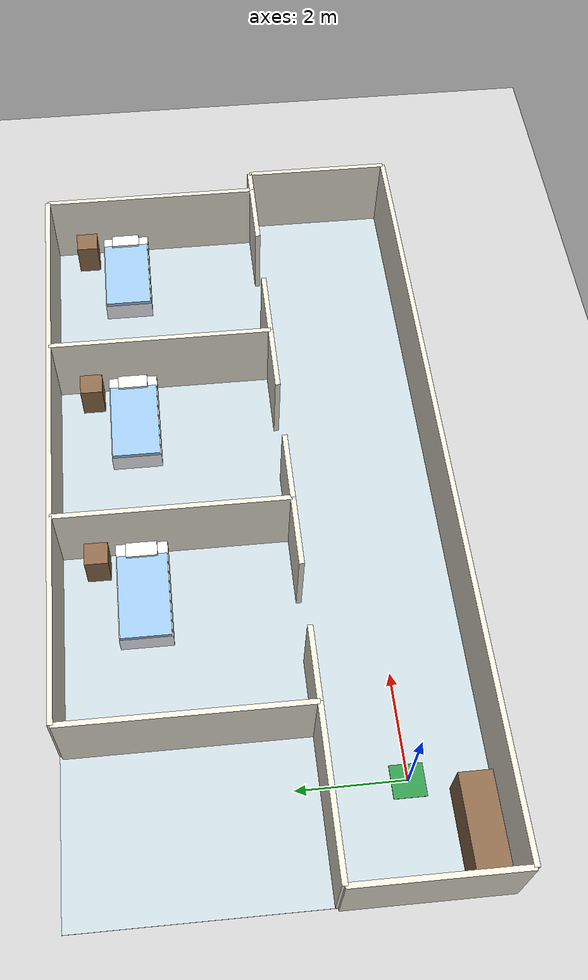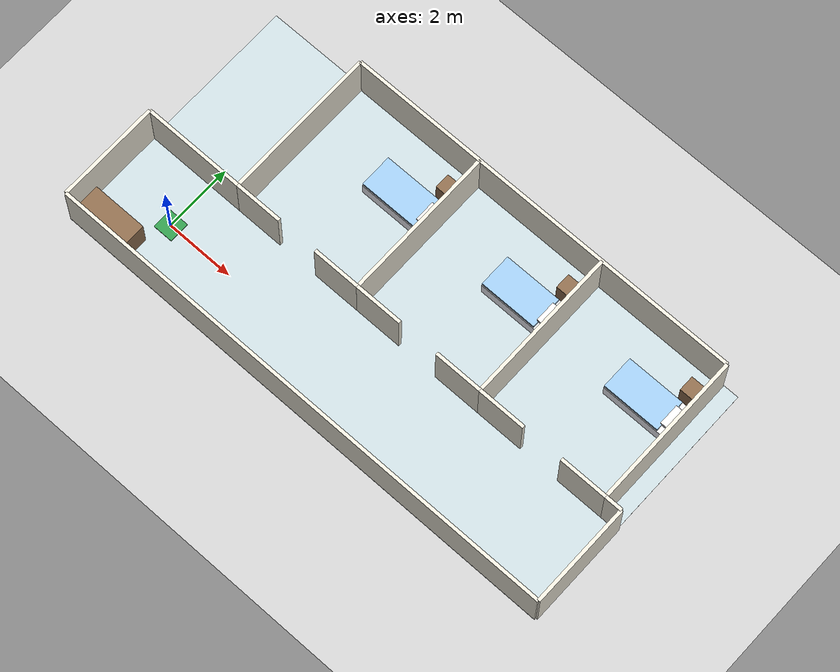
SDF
<sdf version="1.6">
 <world name="hospital_ward">
  <include><uri>model://ground_plane</uri></include>
  <light name="ceiling" type="directional">
   <cast_shadows>false</cast_shadows>
   <pose>0 0 10 0 0 0</pose>
   <diffuse>0.9 0.9 0.9 1</diffuse>
   <specular>0.1 0.1 0.1 1</specular>
   <direction>-0.3 0.4 -1.0</direction>
  </light>
  <scene>
   <ambient>0.65 0.65 0.65 1</ambient>
   <background>0.75 0.8 0.85 1</background>
   <shadows>false</shadows>
  </scene>
  <physics type="ode">
   <real_time_update_rate>1000</real_time_update_rate>
   <max_step_size>0.001</max_step_size>
  </physics>
  <model name="ward_floor">
   <static>true</static>
   <pose>5.750 2.250 -0.005 0 0 0</pose>
   <link name="link">
    <visual name="v">
     <geometry><box><size>15.5 7.6 0.01</size></box></geometry>
     <material><ambient>0.78 0.84 0.86 1</ambient><diffuse>0.78 0.84 0.86 1</diffuse></material>
    </visual>
   </link>
  </model>
  <model name="wall_south">
   <static>true</static>
   <pose>5.750 -1.500 0.800 0 0 0</pose>
   <link name="link">
    <collision name="c"><geometry><box><size>15.5 0.1 1.6</size></box></geometry></collision>
    <visual name="v">
     <geometry><box><size>15.5 0.1 1.6</size></box></geometry>
     <material><ambient>0.93 0.91 0.85 1</ambient><diffuse>0.93 0.91 0.85 1</diffuse></material>
    </visual>
   </link>
  </model>
  <model name="wall_west">
   <static>true</static>
   <pose>-2.000 0.000 0.800 0 0 0</pose>
   <link name="link">
    <collision name="c"><geometry><box><size>0.1 3.0 1.6</size></box></geometry></collision>
    <visual name="v">
     <geometry><box><size>0.1 3.0 1.6</size></box></geometry>
     <material><ambient>0.93 0.91 0.85 1</ambient><diffuse>0.93 0.91 0.85 1</diffuse></material>
    </visual>
   </link>
  </model>
  <model name="wall_east">
   <static>true</static>
   <pose>13.500 0.000 0.800 0 0 0</pose>
   <link name="link">
    <collision name="c"><geometry><box><size>0.1 3.0 1.6</size></box></geometry></collision>
    <visual name="v">
     <geometry><box><size>0.1 3.0 1.6</size></box></geometry>
     <material><ambient>0.93 0.91 0.85 1</ambient><diffuse>0.93 0.91 0.85 1</diffuse></material>
    </visual>
   </link>
  </model>
  <model name="wall_ns_north">
   <static>true</static>
   <pose>-0.500 1.500 0.800 0 0 0</pose>
   <link name="link">
    <collision name="c"><geometry><box><size>3.0 0.1 1.6</size></box></geometry></collision>
    <visual name="v">
     <geometry><box><size>3.0 0.1 1.6</size></box></geometry>
     <material><ambient>0.93 0.91 0.85 1</ambient><diffuse>0.93 0.91 0.85 1</diffuse></material>
    </visual>
   </link>
  </model>
  <model name="wall_east_north">
   <static>true</static>
   <pose>13.250 1.500 0.800 0 0 0</pose>
   <link name="link">
    <collision name="c"><geometry><box><size>0.5 0.1 1.6</size></box></geometry></collision>
    <visual name="v">
     <geometry><box><size>0.5 0.1 1.6</size></box></geometry>
     <material><ambient>0.93 0.91 0.85 1</ambient><diffuse>0.93 0.91 0.85 1</diffuse></material>
    </visual>
   </link>
  </model>
  <model name="wall_rooms_north">
   <static>true</static>
   <pose>7.000 6.000 0.800 0 0 0</pose>
   <link name="link">
    <collision name="c"><geometry><box><size>12.0 0.1 1.6</size></box></geometry></collision>
    <visual name="v">
     <geometry><box><size>12.0 0.1 1.6</size></box></geometry>
     <material><ambient>0.93 0.91 0.85 1</ambient><diffuse>0.93 0.91 0.85 1</diffuse></material>
    </visual>
   </link>
  </model>
  <model name="wall_301_s1">
   <static>true</static>
   <pose>1.700 1.500 0.800 0 0 0</pose>
   <link name="link">
    <collision name="c"><geometry><box><size>1.4 0.1 1.6</size></box></geometry></collision>
    <visual name="v">
     <geometry><box><size>1.4 0.1 1.6</size></box></geometry>
     <material><ambient>0.93 0.91 0.85 1</ambient><diffuse>0.93 0.91 0.85 1</diffuse></material>
    </visual>
   </link>
  </model>
  <model name="wall_301_s2">
   <static>true</static>
   <pose>4.300 1.500 0.800 0 0 0</pose>
   <link name="link">
    <collision name="c"><geometry><box><size>1.4 0.1 1.6</size></box></geometry></collision>
    <visual name="v">
     <geometry><box><size>1.4 0.1 1.6</size></box></geometry>
     <material><ambient>0.93 0.91 0.85 1</ambient><diffuse>0.93 0.91 0.85 1</diffuse></material>
    </visual>
   </link>
  </model>
  <model name="wall_301_w">
   <static>true</static>
   <pose>1.000 3.750 0.800 0 0 0</pose>
   <link name="link">
    <collision name="c"><geometry><box><size>0.1 4.5 1.6</size></box></geometry></collision>
    <visual name="v">
     <geometry><box><size>0.1 4.5 1.6</size></box></geometry>
     <material><ambient>0.93 0.91 0.85 1</ambient><diffuse>0.93 0.91 0.85 1</diffuse></material>
    </visual>
   </link>
  </model>
  <model name="wall_301_e">
   <static>true</static>
   <pose>5.000 3.750 0.800 0 0 0</pose>
   <link name="link">
    <collision name="c"><geometry><box><size>0.1 4.5 1.6</size></box></geometry></collision>
    <visual name="v">
     <geometry><box><size>0.1 4.5 1.6</size></box></geometry>
     <material><ambient>0.93 0.91 0.85 1</ambient><diffuse>0.93 0.91 0.85 1</diffuse></material>
    </visual>
   </link>
  </model>
  <model name="wall_302_s1">
   <static>true</static>
   <pose>5.700 1.500 0.800 0 0 0</pose>
   <link name="link">
    <collision name="c"><geometry><box><size>1.4000000000000004 0.1 1.6</size></box></geometry></collision>
    <visual name="v">
     <geometry><box><size>1.4000000000000004 0.1 1.6</size></box></geometry>
     <material><ambient>0.93 0.91 0.85 1</ambient><diffuse>0.93 0.91 0.85 1</diffuse></material>
    </visual>
   </link>
  </model>
  <model name="wall_302_s2">
   <static>true</static>
   <pose>8.300 1.500 0.800 0 0 0</pose>
   <link name="link">
    <collision name="c"><geometry><box><size>1.4000000000000004 0.1 1.6</size></box></geometry></collision>
    <visual name="v">
     <geometry><box><size>1.4000000000000004 0.1 1.6</size></box></geometry>
     <material><ambient>0.93 0.91 0.85 1</ambient><diffuse>0.93 0.91 0.85 1</diffuse></material>
    </visual>
   </link>
  </model>
  <model name="wall_302_e">
   <static>true</static>
   <pose>9.000 3.750 0.800 0 0 0</pose>
   <link name="link">
    <collision name="c"><geometry><box><size>0.1 4.5 1.6</size></box></geometry></collision>
    <visual name="v">
     <geometry><box><size>0.1 4.5 1.6</size></box></geometry>
     <material><ambient>0.93 0.91 0.85 1</ambient><diffuse>0.93 0.91 0.85 1</diffuse></material>
    </visual>
   </link>
  </model>
  <model name="wall_303_s1">
   <static>true</static>
   <pose>9.700 1.500 0.800 0 0 0</pose>
   <link name="link">
    <collision name="c"><geometry><box><size>1.4000000000000004 0.1 1.6</size></box></geometry></collision>
    <visual name="v">
     <geometry><box><size>1.4000000000000004 0.1 1.6</size></box></geometry>
     <material><ambient>0.93 0.91 0.85 1</ambient><diffuse>0.93 0.91 0.85 1</diffuse></material>
    </visual>
   </link>
  </model>
  <model name="wall_303_s2">
   <static>true</static>
   <pose>12.300 1.500 0.800 0 0 0</pose>
   <link name="link">
    <collision name="c"><geometry><box><size>1.4000000000000004 0.1 1.6</size></box></geometry></collision>
    <visual name="v">
     <geometry><box><size>1.4000000000000004 0.1 1.6</size></box></geometry>
     <material><ambient>0.93 0.91 0.85 1</ambient><diffuse>0.93 0.91 0.85 1</diffuse></material>
    </visual>
   </link>
  </model>
  <model name="wall_303_e">
   <static>true</static>
   <pose>13.000 3.750 0.800 0 0 0</pose>
   <link name="link">
    <collision name="c"><geometry><box><size>0.1 4.5 1.6</size></box></geometry></collision>
    <visual name="v">
     <geometry><box><size>0.1 4.5 1.6</size></box></geometry>
     <material><ambient>0.93 0.91 0.85 1</ambient><diffuse>0.93 0.91 0.85 1</diffuse></material>
    </visual>
   </link>
  </model>
  <model name="bed_301">
   <static>true</static>
   <pose>3.950 4.400 0.210 0 0 0</pose>
   <link name="link">
    <collision name="c"><geometry><box><size>2.0 1.0 0.42</size></box></geometry></collision>
    <visual name="v">
     <geometry><box><size>2.0 1.0 0.42</size></box></geometry>
     <material><ambient>0.97 0.97 1.0 1</ambient><diffuse>0.97 0.97 1.0 1</diffuse></material>
    </visual>
   </link>
  </model>
  <model name="sheet_301">
   <static>true</static>
   <pose>3.800 4.400 0.460 0 0 0</pose>
   <link name="link">
    <collision name="c"><geometry><box><size>1.7 0.96 0.08</size></box></geometry></collision>
    <visual name="v">
     <geometry><box><size>1.7 0.96 0.08</size></box></geometry>
     <material><ambient>0.62 0.78 0.92 1</ambient><diffuse>0.62 0.78 0.92 1</diffuse></material>
    </visual>
   </link>
  </model>
  <model name="pillow_301">
   <static>true</static>
   <pose>4.750 4.400 0.500 0 0 0</pose>
   <link name="link">
    <visual name="v">
     <geometry><box><size>0.3 0.6 0.1</size></box></geometry>
     <material><ambient>0.97 0.97 1.0 1</ambient><diffuse>0.97 0.97 1.0 1</diffuse></material>
    </visual>
   </link>
  </model>
  <model name="cabinet_301">
   <static>true</static>
   <pose>4.650 5.250 0.350 0 0 0</pose>
   <link name="link">
    <collision name="c"><geometry><box><size>0.45 0.45 0.7</size></box></geometry></collision>
    <visual name="v">
     <geometry><box><size>0.45 0.45 0.7</size></box></geometry>
     <material><ambient>0.55 0.42 0.30 1</ambient><diffuse>0.55 0.42 0.30 1</diffuse></material>
    </visual>
   </link>
  </model>
  <model name="bed_302">
   <static>true</static>
   <pose>7.950 4.400 0.210 0 0 0</pose>
   <link name="link">
    <collision name="c"><geometry><box><size>2.0 1.0 0.42</size></box></geometry></collision>
    <visual name="v">
     <geometry><box><size>2.0 1.0 0.42</size></box></geometry>
     <material><ambient>0.97 0.97 1.0 1</ambient><diffuse>0.97 0.97 1.0 1</diffuse></material>
    </visual>
   </link>
  </model>
  <model name="sheet_302">
   <static>true</static>
   <pose>7.800 4.400 0.460 0 0 0</pose>
   <link name="link">
    <collision name="c"><geometry><box><size>1.7 0.96 0.08</size></box></geometry></collision>
    <visual name="v">
     <geometry><box><size>1.7 0.96 0.08</size></box></geometry>
     <material><ambient>0.62 0.78 0.92 1</ambient><diffuse>0.62 0.78 0.92 1</diffuse></material>
    </visual>
   </link>
  </model>
  <model name="pillow_302">
   <static>true</static>
   <pose>8.750 4.400 0.500 0 0 0</pose>
   <link name="link">
    <visual name="v">
     <geometry><box><size>0.3 0.6 0.1</size></box></geometry>
     <material><ambient>0.97 0.97 1.0 1</ambient><diffuse>0.97 0.97 1.0 1</diffuse></material>
    </visual>
   </link>
  </model>
  <model name="cabinet_302">
   <static>true</static>
   <pose>8.650 5.250 0.350 0 0 0</pose>
   <link name="link">
    <collision name="c"><geometry><box><size>0.45 0.45 0.7</size></box></geometry></collision>
    <visual name="v">
     <geometry><box><size>0.45 0.45 0.7</size></box></geometry>
     <material><ambient>0.55 0.42 0.30 1</ambient><diffuse>0.55 0.42 0.30 1</diffuse></material>
    </visual>
   </link>
  </model>
  <model name="bed_303">
   <static>true</static>
   <pose>11.950 4.400 0.210 0 0 0</pose>
   <link name="link">
    <collision name="c"><geometry><box><size>2.0 1.0 0.42</size></box></geometry></collision>
    <visual name="v">
     <geometry><box><size>2.0 1.0 0.42</size></box></geometry>
     <material><ambient>0.97 0.97 1.0 1</ambient><diffuse>0.97 0.97 1.0 1</diffuse></material>
    </visual>
   </link>
  </model>
  <model name="sheet_303">
   <static>true</static>
   <pose>11.800 4.400 0.460 0 0 0</pose>
   <link name="link">
    <collision name="c"><geometry><box><size>1.7 0.96 0.08</size></box></geometry></collision>
    <visual name="v">
     <geometry><box><size>1.7 0.96 0.08</size></box></geometry>
     <material><ambient>0.62 0.78 0.92 1</ambient><diffuse>0.62 0.78 0.92 1</diffuse></material>
    </visual>
   </link>
  </model>
  <model name="pillow_303">
   <static>true</static>
   <pose>12.750 4.400 0.500 0 0 0</pose>
   <link name="link">
    <visual name="v">
     <geometry><box><size>0.3 0.6 0.1</size></box></geometry>
     <material><ambient>0.97 0.97 1.0 1</ambient><diffuse>0.97 0.97 1.0 1</diffuse></material>
    </visual>
   </link>
  </model>
  <model name="cabinet_303">
   <static>true</static>
   <pose>12.650 5.250 0.350 0 0 0</pose>
   <link name="link">
    <collision name="c"><geometry><box><size>0.45 0.45 0.7</size></box></geometry></collision>
    <visual name="v">
     <geometry><box><size>0.45 0.45 0.7</size></box></geometry>
     <material><ambient>0.55 0.42 0.30 1</ambient><diffuse>0.55 0.42 0.30 1</diffuse></material>
    </visual>
   </link>
  </model>
  <model name="ns_desk">
   <static>true</static>
   <pose>-1.000 -1.000 0.450 0 0 0</pose>
   <link name="link">
    <collision name="c"><geometry><box><size>1.6 0.6 0.9</size></box></geometry></collision>
    <visual name="v">
     <geometry><box><size>1.6 0.6 0.9</size></box></geometry>
     <material><ambient>0.55 0.42 0.30 1</ambient><diffuse>0.55 0.42 0.30 1</diffuse></material>
    </visual>
   </link>
  </model>
  <model name="ns_dock">
   <static>true</static>
   <pose>0.000 0.000 0.005 0 0 0</pose>
   <link name="link">
    <visual name="v">
     <geometry><box><size>0.6 0.6 0.01</size></box></geometry>
     <material><ambient>0.2 0.6 0.3 1</ambient><diffuse>0.2 0.6 0.3 1</diffuse></material>
    </visual>
   </link>
  </model>
 </world>
</sdf>
